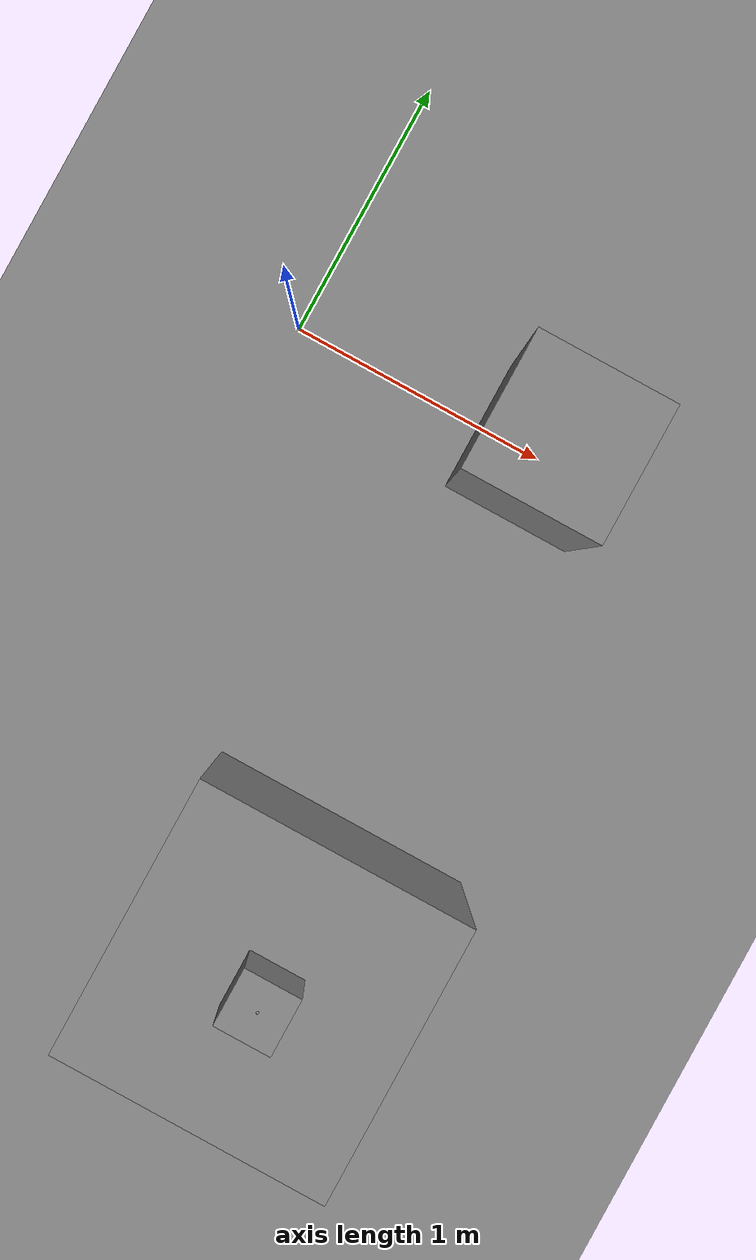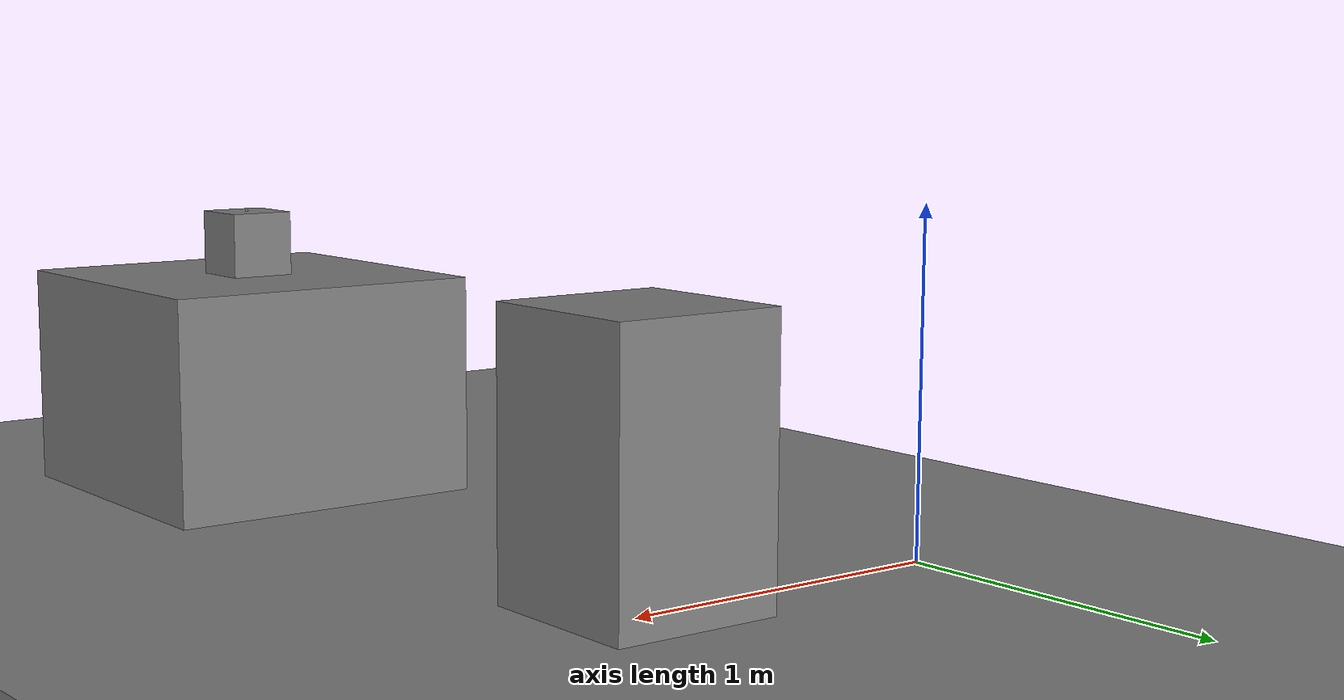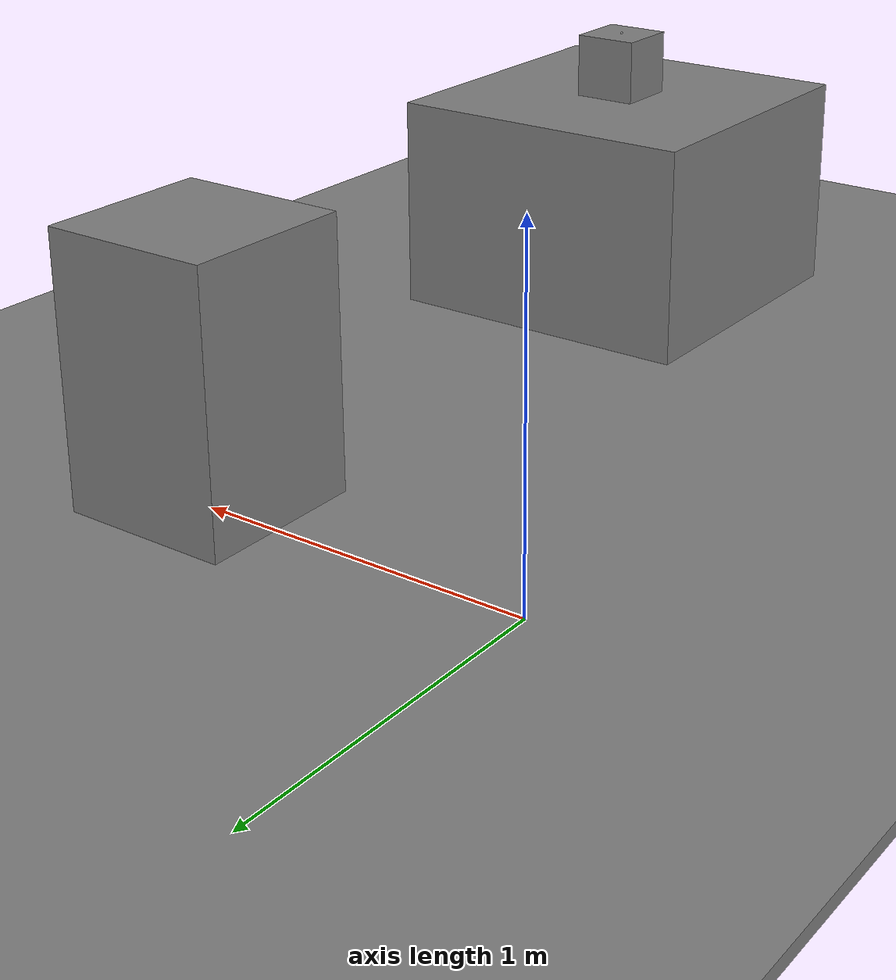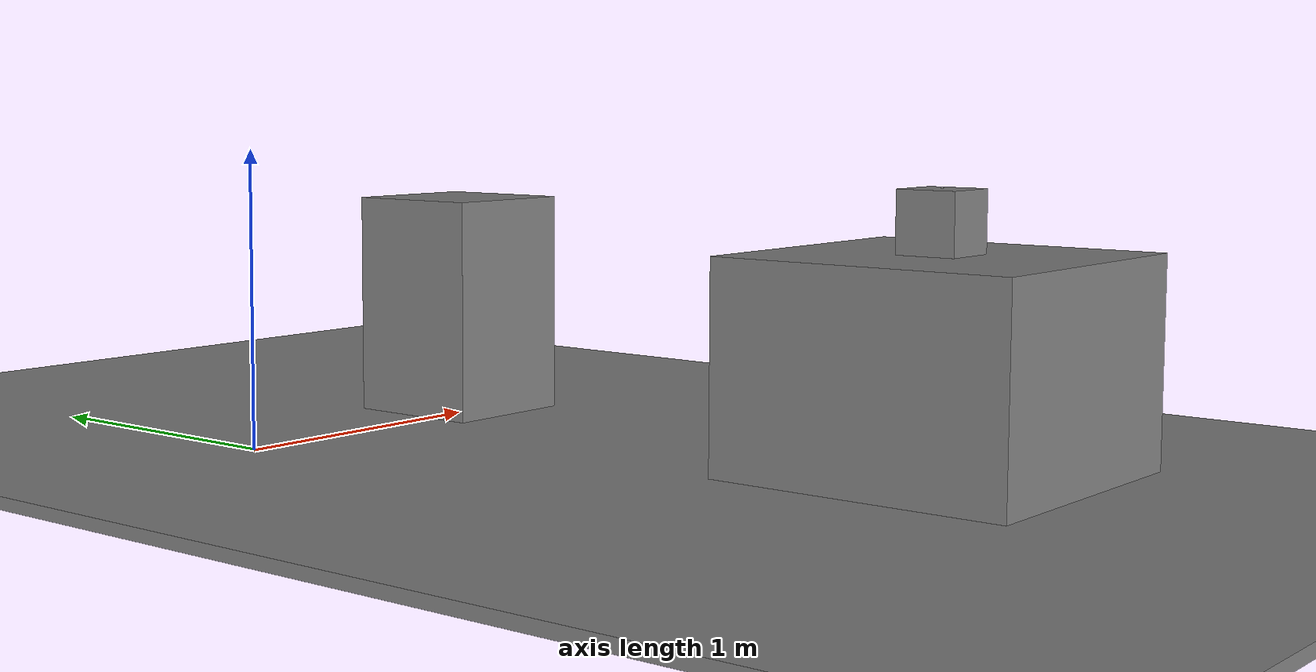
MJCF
<mujoco model="semantic_fixture">
  <worldbody>
    <geom name="office_floor" type="box" pos="0 0 0" size="5 5 0.02" contype="0" conaffinity="0"/>
    <body name="chair_01" pos="1 0 0.4"><geom name="chair_geom" type="box" size="0.25 0.25 0.4"/></body>
    <body name="table_01" pos="1 -2 0.35"><geom name="table_geom" type="box" size="0.5 0.5 0.35"/></body>
    <body name="cup_01" pos="1 -2 0.8"><geom name="cup_geom" type="box" size="0.1 0.1 0.1"/><site name="cup_01_grasp_site" pos="0 0 0.1"/></body>
  </worldbody>
</mujoco>
